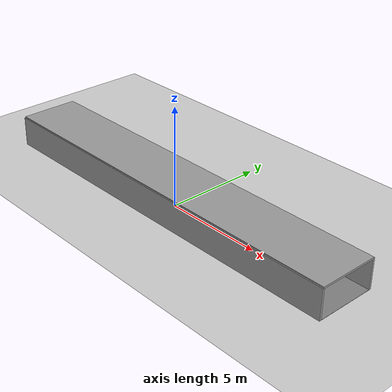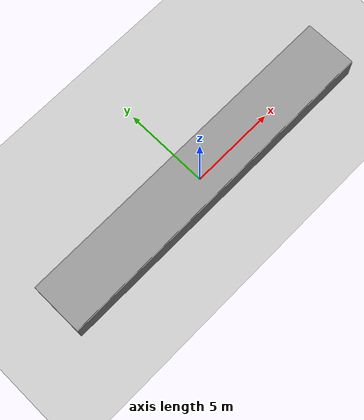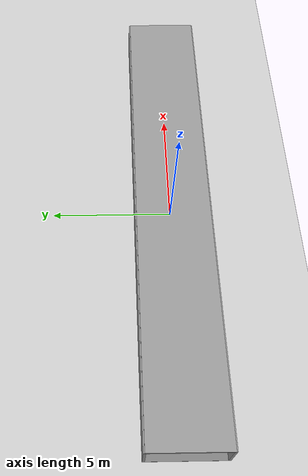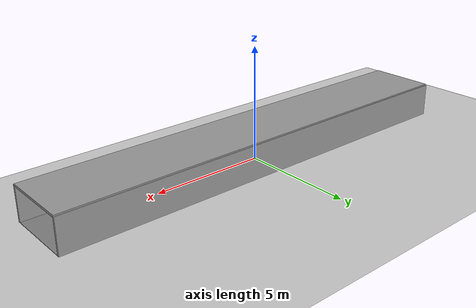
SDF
<sdf version='1.9'>
  <world name='tunnel_world'>
    <physics name='1ms' type='ode'>
      <max_step_size>0.001</max_step_size>
      <real_time_factor>1</real_time_factor>
      <real_time_update_rate>1000</real_time_update_rate>
    </physics>
    <plugin name='gz::sim::systems::Physics' filename='ignition-gazebo-physics-system'/>
    <plugin name='gz::sim::systems::UserCommands' filename='ignition-gazebo-user-commands-system'/>
    <plugin name='gz::sim::systems::SceneBroadcaster' filename='ignition-gazebo-scene-broadcaster-system'/>
    <plugin name='gz::sim::systems::Contact' filename='ignition-gazebo-contact-system'/>
    <plugin name='gz::sim::systems::Sensors' filename='ignition-gazebo-sensors-system'>
      <render_engine>ogre2</render_engine>
    </plugin>
    <gravity>0 0 -9.8</gravity>
    <scene>
      <ambient>0.4 0.4 0.4 1</ambient>
      <background>0.7 0.7 0.7 1</background>
      <shadows>true</shadows>
    </scene>
    <magnetic_field>6e-06 2.3e-05 -4.2e-05</magnetic_field>
    <atmosphere type='adiabatic'/>
    <include>
      <uri>https://fuel.gazebosim.org/1.0/OpenRobotics/models/Ground Plane</uri>
      <name>ground_plane</name>
      <pose>0 0 0 0 -0 0</pose>
    </include>
    <model name='tunnel'>
      <static>true</static>
      <link name='floor'>
        <pose>0 0 -0.5 0 -0 0</pose>
        <collision name='floor_collision'>
          <geometry>
            <box>
              <size>20 3 1</size>
            </box>
          </geometry>
          <surface>
            <friction>
              <ode/>
            </friction>
            <bounce/>
            <contact/>
          </surface>
        </collision>
        <visual name='floor_visual'>
          <geometry>
            <box>
              <size>20 3 1</size>
            </box>
          </geometry>
          <material>
            <ambient>0.5 0.5 0.5 1</ambient>
            <diffuse>0.5 0.5 0.5 1</diffuse>
          </material>
        </visual>
        <inertial>
          <pose>0 0 0 0 -0 0</pose>
          <mass>1</mass>
          <inertia>
            <ixx>1</ixx>
            <ixy>0</ixy>
            <ixz>0</ixz>
            <iyy>1</iyy>
            <iyz>0</iyz>
            <izz>1</izz>
          </inertia>
        </inertial>
        <enable_wind>false</enable_wind>
      </link>
      <link name='left_wall'>
        <pose>0 -1.5 0.5 0 -0 0</pose>
        <collision name='left_wall_collision'>
          <geometry>
            <box>
              <size>20 0.1 2</size>
            </box>
          </geometry>
          <surface>
            <friction>
              <ode/>
            </friction>
            <bounce/>
            <contact/>
          </surface>
        </collision>
        <visual name='left_wall_visual'>
          <geometry>
            <box>
              <size>20 0.1 2</size>
            </box>
          </geometry>
          <material>
            <ambient>0.6 0.6 0.6 1</ambient>
            <diffuse>0.6 0.6 0.6 1</diffuse>
          </material>
        </visual>
        <inertial>
          <pose>0 0 0 0 -0 0</pose>
          <mass>1</mass>
          <inertia>
            <ixx>1</ixx>
            <ixy>0</ixy>
            <ixz>0</ixz>
            <iyy>1</iyy>
            <iyz>0</iyz>
            <izz>1</izz>
          </inertia>
        </inertial>
        <enable_wind>false</enable_wind>
      </link>
      <link name='right_wall'>
        <pose>0 1.5 0.5 0 -0 0</pose>
        <collision name='right_wall_collision'>
          <geometry>
            <box>
              <size>20 0.1 2</size>
            </box>
          </geometry>
          <surface>
            <friction>
              <ode/>
            </friction>
            <bounce/>
            <contact/>
          </surface>
        </collision>
        <visual name='right_wall_visual'>
          <geometry>
            <box>
              <size>20 0.1 2</size>
            </box>
          </geometry>
          <material>
            <ambient>0.6 0.6 0.6 1</ambient>
            <diffuse>0.6 0.6 0.6 1</diffuse>
          </material>
        </visual>
        <inertial>
          <pose>0 0 0 0 -0 0</pose>
          <mass>1</mass>
          <inertia>
            <ixx>1</ixx>
            <ixy>0</ixy>
            <ixz>0</ixz>
            <iyy>1</iyy>
            <iyz>0</iyz>
            <izz>1</izz>
          </inertia>
        </inertial>
        <enable_wind>false</enable_wind>
      </link>
      <link name='ceiling'>
        <pose>0 0 1.5 0 -0 0</pose>
        <collision name='ceiling_collision'>
          <geometry>
            <box>
              <size>20 3 0.1</size>
            </box>
          </geometry>
          <surface>
            <friction>
              <ode/>
            </friction>
            <bounce/>
            <contact/>
          </surface>
        </collision>
        <visual name='ceiling_visual'>
          <geometry>
            <box>
              <size>20 3 0.1</size>
            </box>
          </geometry>
          <material>
            <ambient>0.6 0.6 0.6 1</ambient>
            <diffuse>0.6 0.6 0.6 1</diffuse>
          </material>
        </visual>
        <inertial>
          <pose>0 0 0 0 -0 0</pose>
          <mass>1</mass>
          <inertia>
            <ixx>1</ixx>
            <ixy>0</ixy>
            <ixz>0</ixz>
            <iyy>1</iyy>
            <iyz>0</iyz>
            <izz>1</izz>
          </inertia>
        </inertial>
        <enable_wind>false</enable_wind>
      </link>
      <pose>0 0 0 0 -0 0</pose>
      <self_collide>false</self_collide>
    </model>
    <!-- Drone is spawned via launch file, not included in world -->
    <light name='sun' type='directional'>
      <pose>0 0 10 0 -0.5 0</pose>
      <cast_shadows>true</cast_shadows>
      <intensity>1</intensity>
      <direction>0 0 -1</direction>
      <diffuse>0.8 0.8 0.8 1</diffuse>
      <specular>0.2 0.2 0.2 1</specular>
      <attenuation>
        <range>10</range>
        <linear>1</linear>
        <constant>1</constant>
        <quadratic>0</quadratic>
      </attenuation>
      <spot>
        <inner_angle>0</inner_angle>
        <outer_angle>0</outer_angle>
        <falloff>0</falloff>
      </spot>
    </light>
  </world>
</sdf>
